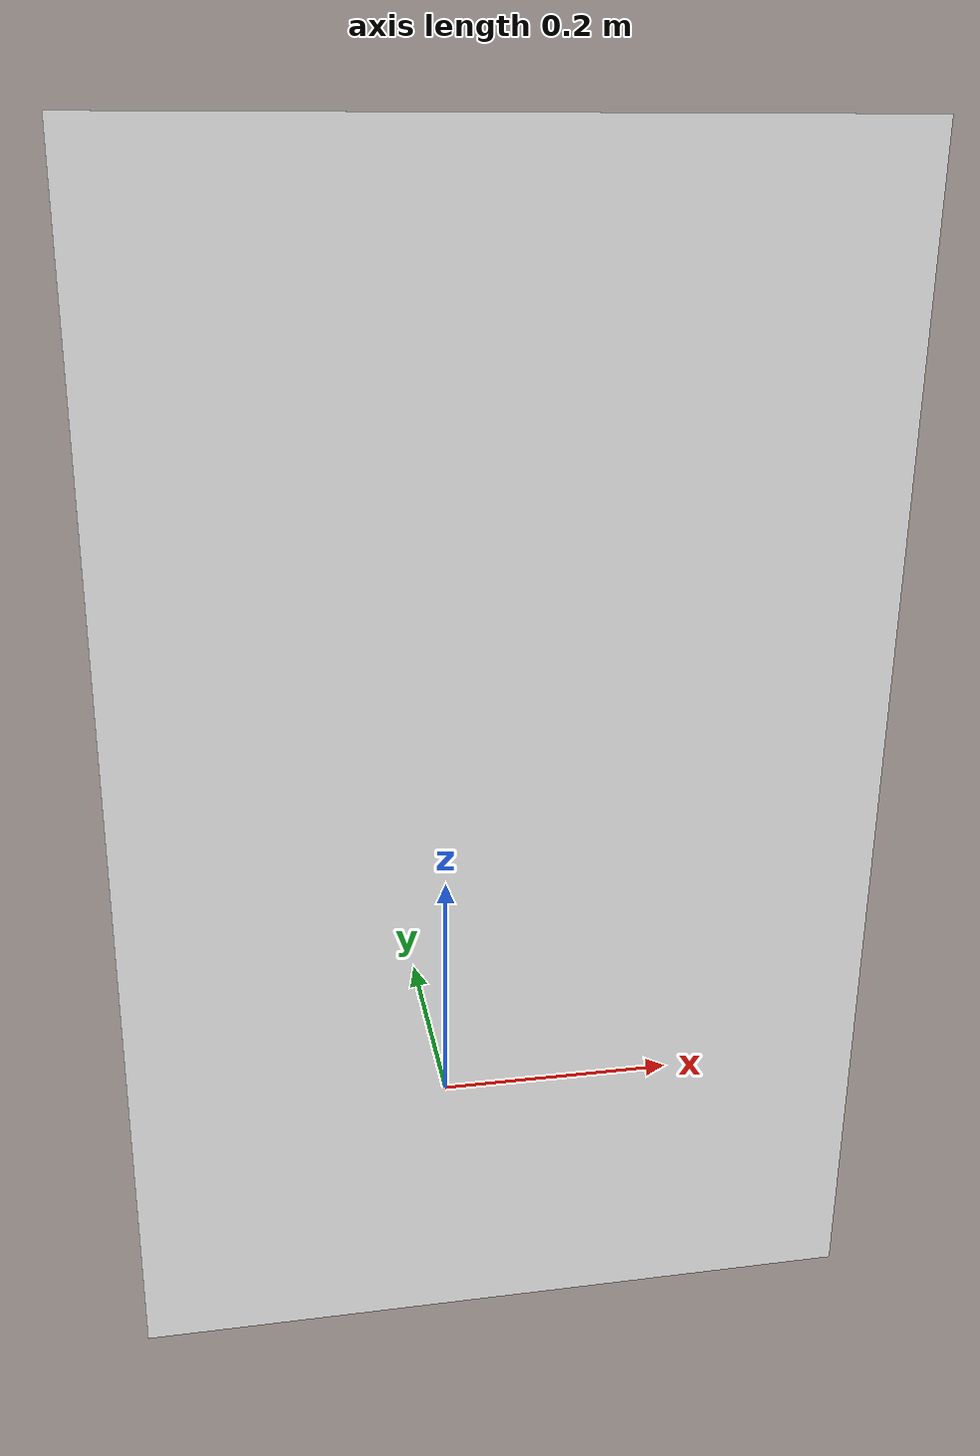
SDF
<?xml version="1.0"?>
<sdf version='1.6'>
  <model name='box_as_table'>

    <link name="box">
      <pose>0 0 0.4 0 -0 0</pose>
      <visual>
        <geometry>
          <box>
            <size>0.5 0.5 0.8</size>
          </box>
        </geometry>
      <material name="green">
        <ambient> 0.9 0.9 0.9 1</ambient>
        <diffuse> 0.9 0.9 0.9 1</diffuse>
      </material>
      </visual>

      <inertial>
        <mass>0.988882</mass>
        <inertia>
          <ixx>0.162992</ixx>
          <ixy>0</ixy>
          <ixz>0</ixz>
          <iyy>0.162992</iyy>
          <iyz>0</iyz>
          <izz>0.164814</izz>
        </inertia>
      </inertial>

      <collision>
        <max_contacts>10</max_contacts>
        <pose>0 0 0 0 -0 0</pose>
        <geometry>
          <box>
            <size>0.5 0.5 0.8</size>
          </box>
        </geometry>
      </collision>
    </link>

  </model>
</sdf>
